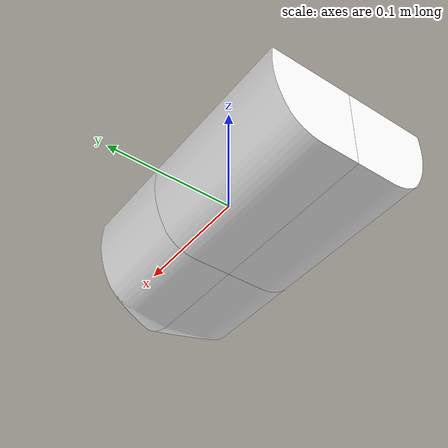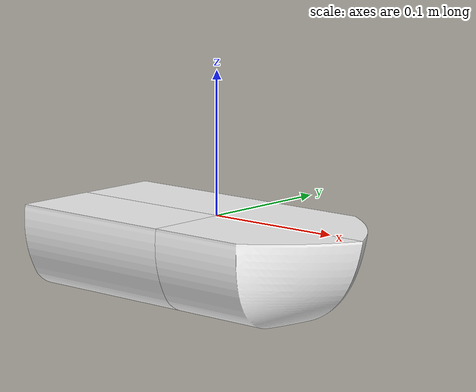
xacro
<?xml version="1.0" ?>
<robot name="aries" xmlns:xacro="http://www.ros.org/wiki/xacro">

  <xacro:property name="float_compensation" value="2.60"/>
  <xacro:property name="limit_radius" value="0.031"/>
  <!-- Don't touch z_shift, it may break the freefloating_gazebo! -->
  <xacro:property name="z_shift" value="0.00"/>

  <gazebo>
    <static>false</static>
  </gazebo>

  <!--                           BOAT HULL 00                                -->
  <link name="boat_hull_00">
      <visual name="boat_hull_00_visual">
          <origin xyz="0.0 0.0 ${z_shift}" rpy="0.0 0.0 0.0"/>
          <geometry>
            <mesh filename="file://$(find gazebo_simulation)/urdf/collada/boat_hull_00L.dae" />
          </geometry>
      </visual>

      <collision name="boat_hull_00_collision">
        <geometry>
          <mesh filename="file://$(find gazebo_simulation)/urdf/collada/boat_hull_00L.dae" />
        </geometry>
      </collision>

      <inertial>
        <origin xyz="0.0 0.0 ${z_shift}" rpy="0.0 0.0 0.0"/>
        <mass value="0.2" />
        <inertia
          ixx="0.000000189584528"
          ixy="-0.000000019624792"
          ixz="-0.000000030762472"
          iyy="0.000000387068224"
          iyz="0.000000011436007"
          izz="0.000000392989152"
        />
      </inertial>

      <buoyancy>
        <compensation>${float_compensation}</compensation>
        <origin xyz="0.00 0.00 0.00"/>
        <limit radius="${limit_radius}"/>
        <damping xyz="60 100 100"/>
      </buoyancy>
  </link>

  <!--                           BOAT HULL 01                                -->
  <link name="boat_hull_01">
      <visual name="boat_hull_01_visual">
          <origin xyz="0.0 0.0 ${z_shift}" rpy="0.0 0.0 0.0"/>
          <geometry>
            <mesh filename="file://$(find gazebo_simulation)/urdf/collada/boat_hull_01L.dae" />
          </geometry>
      </visual>

      <collision name="boat_hull_01_collision">
        <geometry>
          <mesh filename="file://$(find gazebo_simulation)/urdf/collada/boat_hull_01L.dae" />
        </geometry>
      </collision>

      <inertial>
        <origin xyz="0.0 0.0 ${z_shift}" rpy="0.0 0.0 0.0"/>
        <mass value="0.2" />
        <inertia
	         ixx="0.000000189568800"
	         ixy="-0.000000019635088"
	         ixz="0.000000030766816"
	         iyy="0.000000387051808"
	         iyz="-0.000000011429428"
	         izz="0.000000392972160"
        />
      </inertial>

      <buoyancy>
        <compensation>${float_compensation}</compensation>
        <origin xyz="0.00 0.00 0.00"/>
        <limit radius="${limit_radius}"/>
        <damping xyz="60 100 100"/>
      </buoyancy>
  </link>

  <joint name="base_to_01" type="floating">
    <parent link="boat_hull_00"/>
    <child link="boat_hull_01"/>
    <origin xyz="0 0 0" rpy="0 0 0"/>
  </joint>

  <!--                           BOAT HULL 10                                -->
  <link name="boat_hull_10">
      <visual name="boat_hull_10_visual">
          <origin xyz="0.0 0.0 ${z_shift}" rpy="0.0 0.0 0.0"/>
          <geometry>
            <mesh filename="file://$(find gazebo_simulation)/urdf/collada/boat_hull_10L.dae" />
          </geometry>
      </visual>

      <collision name="boat_hull_10_collision">
        <geometry>
          <mesh filename="file://$(find gazebo_simulation)/urdf/collada/boat_hull_10L.dae" />
        </geometry>
      </collision>

      <inertial>
        <origin xyz="0.0 0.0 ${z_shift}" rpy="0.0 0.0 0.0"/>
        <mass value="0.2" />
        <inertia
	         ixx="0.000000257059536"
	         ixy="-0.000000000000027"
	         ixz="0.000000000000002"
	         iyy="0.000000717683072"
	         iyz="0.000000020537530"
	         izz="0.000000725221888"
        />
      </inertial>

      <buoyancy>
        <compensation>${float_compensation}</compensation>
        <origin xyz="0.00 0.00 0.00"/>
        <limit radius="${limit_radius}"/>
        <damping xyz="60 100 100"/>
      </buoyancy>
  </link>

  <joint name="base_to_10" type="floating">
    <parent link="boat_hull_00"/>
    <child link="boat_hull_10"/>
    <origin xyz="0 0 0" rpy="0 0 0"/>
  </joint>

  <!--                           BOAT HULL 11                                -->
  <link name="boat_hull_11">
      <visual name="boat_hull_11_visual">
          <origin xyz="0.0 0.0 ${z_shift}" rpy="0.0 0.0 0.0"/>
          <geometry>
            <mesh filename="file://$(find gazebo_simulation)/urdf/collada/boat_hull_11L.dae" />
          </geometry>
      </visual>

      <collision name="boat_hull_11_collision">
        <geometry>
          <mesh filename="file://$(find gazebo_simulation)/urdf/collada/boat_hull_11L.dae" />
        </geometry>
      </collision>

      <inertial>
        <origin xyz="0.0 0.0 ${z_shift}" rpy="0.0 0.0 0.0"/>
        <mass value="0.2" />
        <inertia
	         ixx="0.000000257060976"
	         ixy="-0.000000000000073"
	         ixz="-0.000000000000202"
	         iyy="0.000000717684736"
	         iyz="-0.000000020538182"
	         izz="0.000000725222656"
        />
      </inertial>

      <buoyancy>
        <compensation>${float_compensation}</compensation>
        <origin xyz="0.00 0.00 0.00"/>
        <limit radius="${limit_radius}"/>
        <damping xyz="60 100 100"/>
      </buoyancy>
  </link>

  <joint name="base_to_11" type="floating">
    <parent link="boat_hull_00"/>
    <child link="boat_hull_11"/>
    <origin xyz="0 0 0" rpy="0 0 0"/>
  </joint>

</robot>
